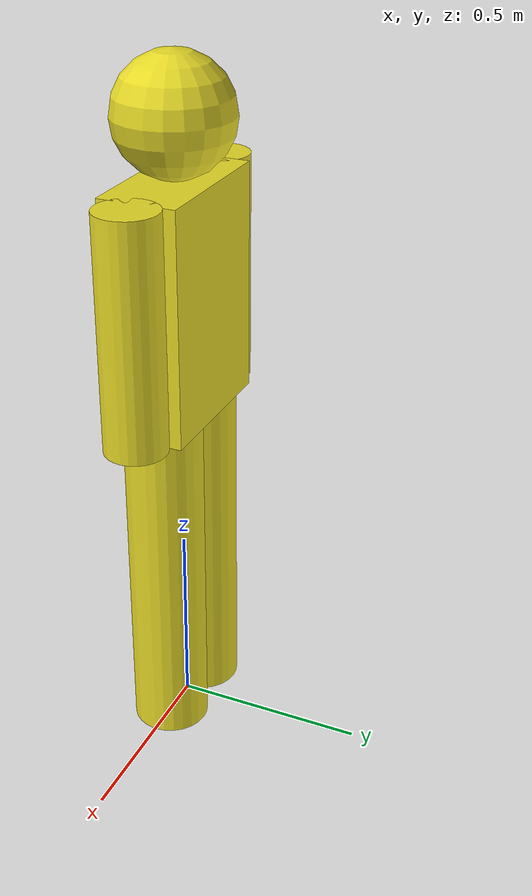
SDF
<?xml version='1.0'?>
<sdf version='1.4'>
  <model name="simple_human">
  	<static>true</static>

  		<link name='body'>
            <pose>0 0 1.2 0 0 0</pose>

            <collision name='collision'>
              <geometry>
                <box>
                  <size>.4 .2 .6</size>
                </box>
              </geometry>
            </collision>

            <visual name='visual'>
              <geometry>
                <box>
                  <size>.4 .2 .6</size>
                </box>
              </geometry>
              <material>
          		<script>
            		<uri>file://media/materials/scripts/gazebo.material</uri>
            		<name>Gazebo/Yellow</name>
          		</script>
        	  </material>
            </visual>
          </link>

		<link name='right_leg'>
            <pose>0.1 0 0.45 0 0 0</pose>

            <collision name='collision'>
              <geometry>
                <cylinder>
                  <radius>.1</radius>
                  <length>.9</length>
                </cylinder>
              </geometry>
            </collision>

            <visual name='visual'>
              <geometry>
                <cylinder>
                  <radius>.1</radius>
                  <length>.9</length>
                </cylinder>
              </geometry>
              <material>
          		<script>
            		<uri>file://media/materials/scripts/gazebo.material</uri>
            		<name>Gazebo/Yellow</name>
          		</script>
        	  </material>
            </visual>
          </link>

        <link name='left_leg'>
            <pose>-0.1 0 0.45 0 0 0</pose>

            <collision name='collision'>
              <geometry>
                <cylinder>
                  <radius>.1</radius>
                  <length>.9</length>
                </cylinder>
              </geometry>
            </collision>

            <visual name='visual'>
              <geometry>
                <cylinder>
                  <radius>.1</radius>
                  <length>.9</length>
                </cylinder>
              </geometry>
              <material>
          		<script>
            		<uri>file://media/materials/scripts/gazebo.material</uri>
            		<name>Gazebo/Yellow</name>
          		</script>
        	  </material>
            </visual>
          </link>

		<link name='right_arm'>
            <pose>.24 0 1.2 0 0 0</pose>

            <collision name='collision'>
              <geometry>
                <cylinder>
                  <radius>.08</radius>
                  <length>.6</length>
                </cylinder>
              </geometry>
            </collision>

            <visual name='visual'>
              <geometry>
                <cylinder>
                  <radius>.08</radius>
                  <length>.6</length>
                </cylinder>
              </geometry>
              <material>
          		<script>
            		<uri>file://media/materials/scripts/gazebo.material</uri>
            		<name>Gazebo/Yellow</name>
          		</script>
        	  </material>
            </visual>
          </link>

        <link name='left_arm'>
            <pose>-0.24 0 1.2 0 0 0</pose>

            <collision name='collision'>
              <geometry>
                <cylinder>
                  <radius>.08</radius>
                  <length>.6</length>
                </cylinder>
              </geometry>
            </collision>

            <visual name='visual'>
              <geometry>
                <cylinder>
                  <radius>.08</radius>
                  <length>.6</length>
                </cylinder>
              </geometry>
              <material>
          		<script>
            		<uri>file://media/materials/scripts/gazebo.material</uri>
            		<name>Gazebo/Yellow</name>
          		</script>
        	  </material>
            </visual>
          </link>

        <link name='head'>
            <pose>0 0 1.65 0 0 0</pose>

            <collision name='collision'>
              <geometry>
                <sphere>
                  <radius>.15</radius>
                </sphere>
              </geometry>
            </collision>

            <visual name='visual'>
              <geometry>
                <sphere>
                  <radius>.15</radius>
                </sphere>
              </geometry>
              <material>
          		<script>
            		<uri>file://media/materials/scripts/gazebo.material</uri>
            		<name>Gazebo/Yellow</name>
          		</script>
        	  </material>
            </visual>
          </link>
  </model>
</sdf>
